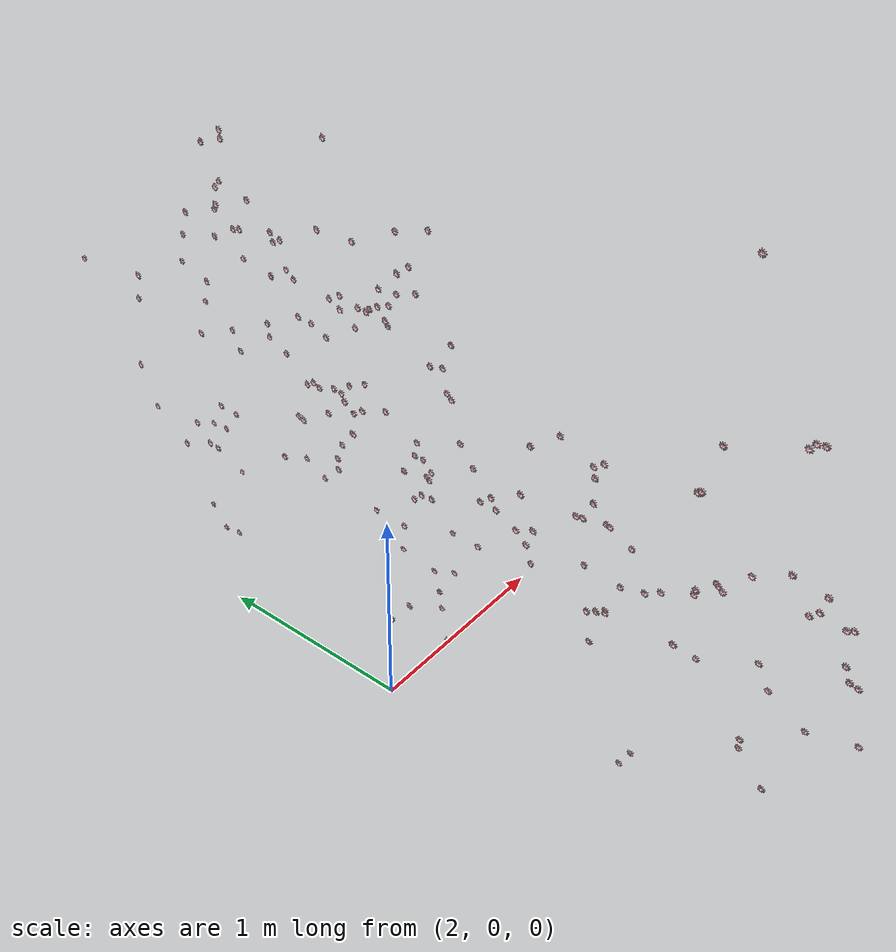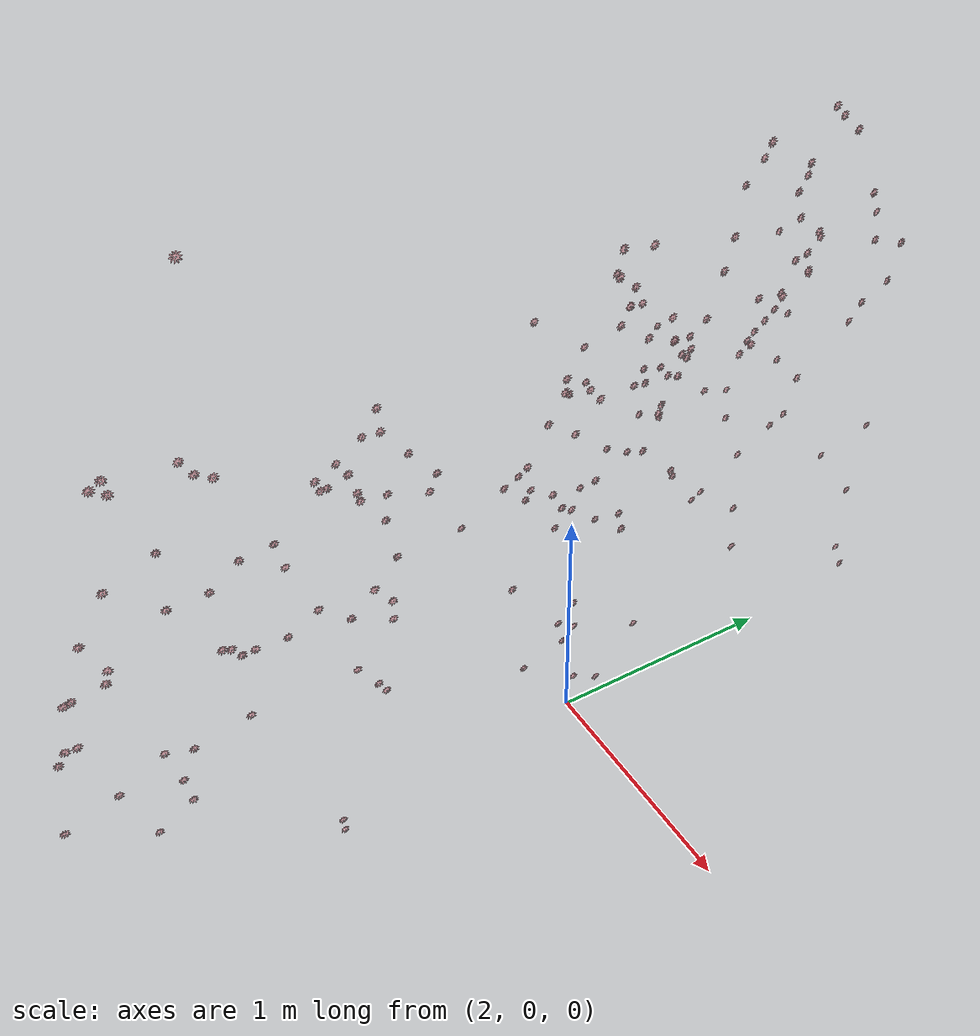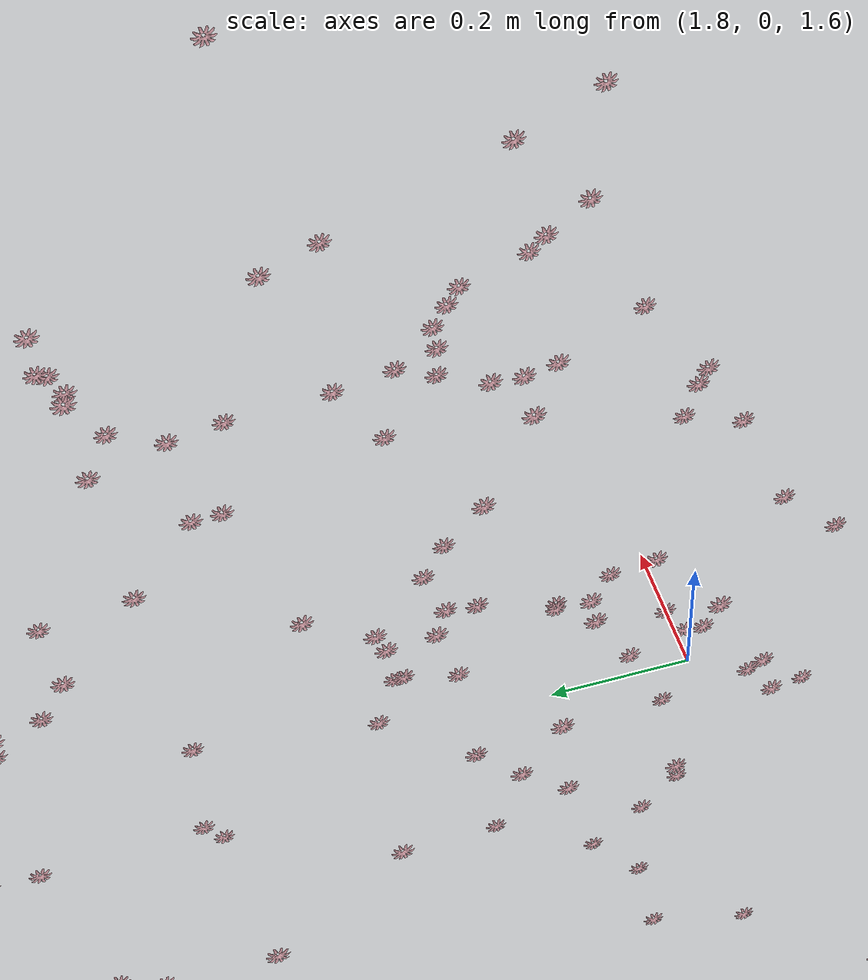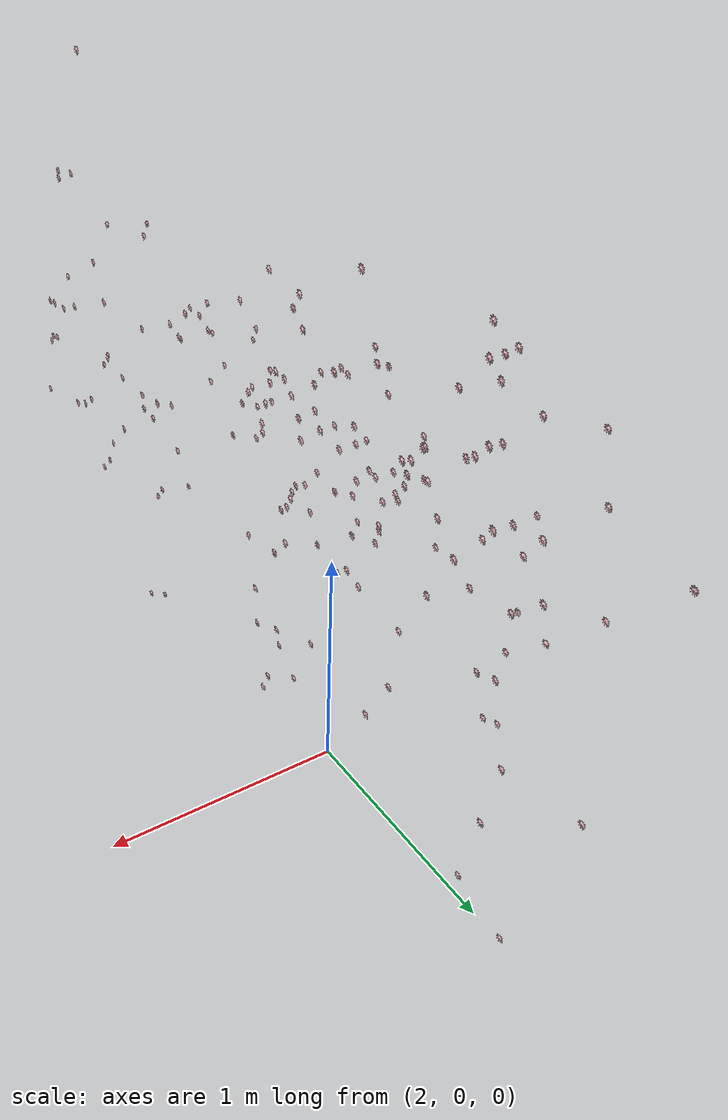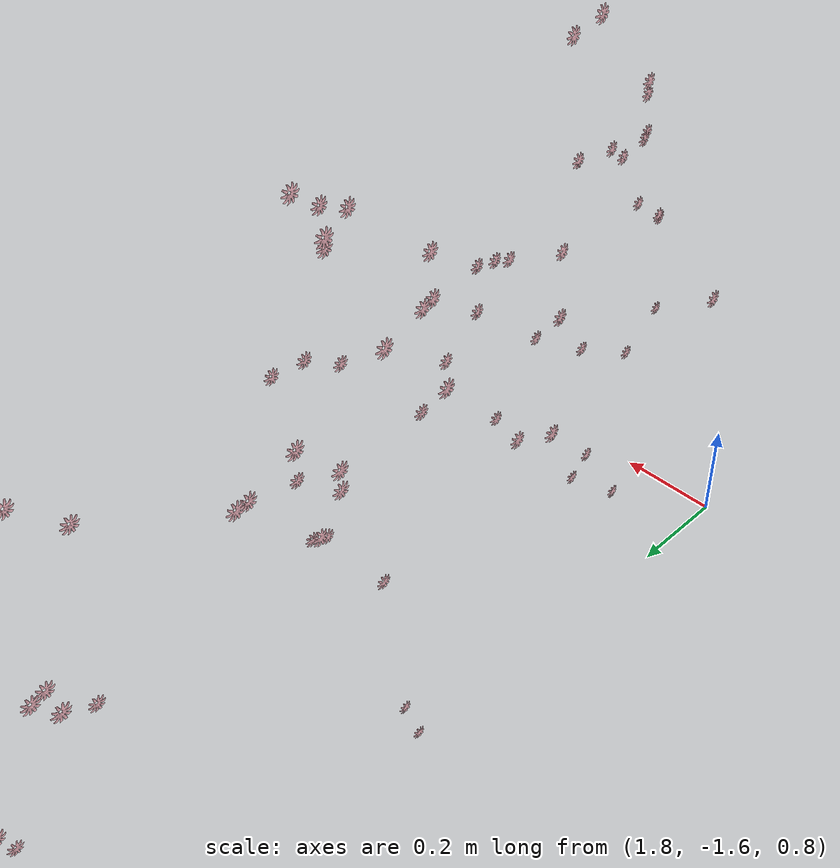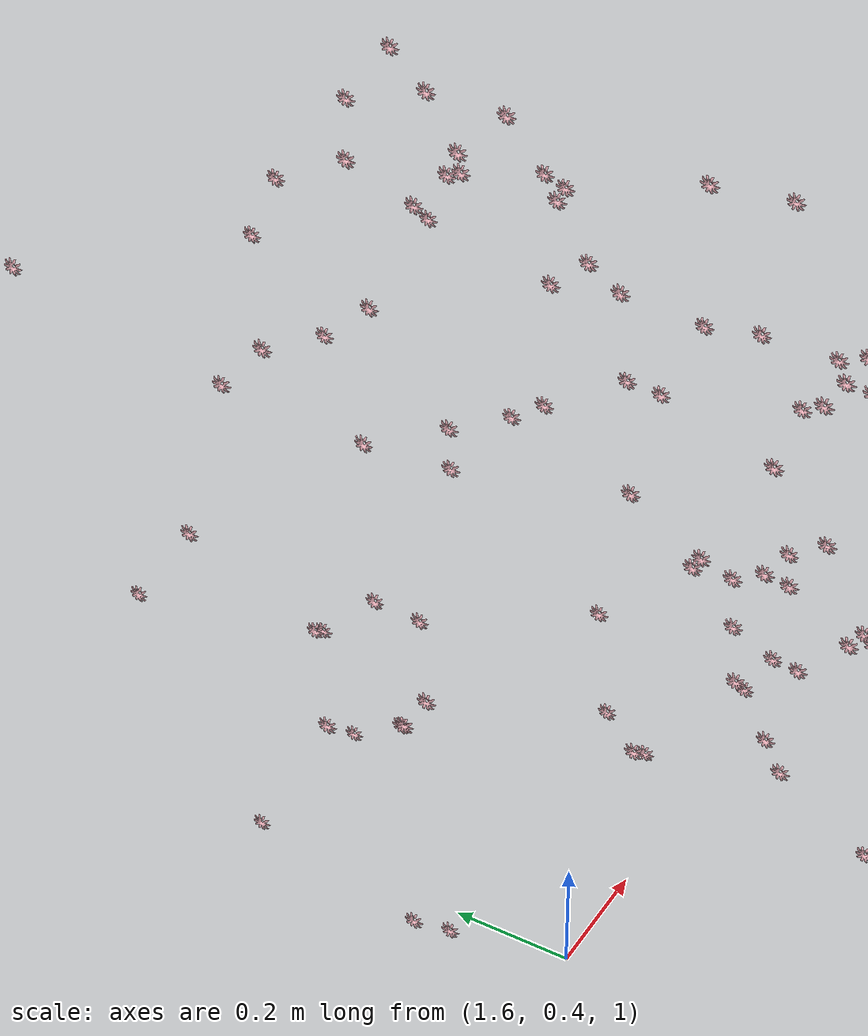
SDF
<sdf version="1.4">
 <world name="pollination_world">
  <include><uri>model://sun</uri></include>
  <include>
   <uri>model://flower2</uri>
   <name>target0</name>
   <pose>2.111854703426361 -0.948925614356995 0.847505693435669 0 -1.57 0</pose>
  </include>
  <include>
   <uri>model://flower2</uri>
   <name>target1</name>
   <pose>2.2413291144371033 -1.124187941551208 0.196296977996826 0 -1.57 0</pose>
  </include>
  <include>
   <uri>model://flower2</uri>
   <name>target2</name>
   <pose>2.1803121256828306 -1.106918330192566 0.173609752655029 0 -1.57 0</pose>
  </include>
  <include>
   <uri>model://flower2</uri>
   <name>target3</name>
   <pose>2.2065389323234554 -1.3735675859451288 0.9475400352478031 0 -1.57 0</pose>
  </include>
  <include>
   <uri>model://flower2</uri>
   <name>target4</name>
   <pose>2.1533326220512388 -1.6287138795852658 0.717423534393311 0 -1.57 0</pose>
  </include>
  <include>
   <uri>model://flower2</uri>
   <name>target5</name>
   <pose>2.155951926708221 -1.7508076143264801 0.5203785705566409 0 -1.57 0</pose>
  </include>
  <include>
   <uri>model://flower2</uri>
   <name>target6</name>
   <pose>2.2230547499656677 -1.84487541675568 0.8533997631072999 0 -1.57 0</pose>
  </include>
  <include>
   <uri>model://flower2</uri>
   <name>target7</name>
   <pose>2.280927789211273 -2.0348820924758897 0.85346474647522 0 -1.57 0</pose>
  </include>
  <include>
   <uri>model://flower2</uri>
   <name>target8</name>
   <pose>2.1810714125633237 -1.618321042060852 0.637629718780518 0 -1.57 0</pose>
  </include>
  <include>
   <uri>model://flower2</uri>
   <name>target9</name>
   <pose>2.275654122829437 -0.913814749717712 0.8746062469482421 0 -1.57 0</pose>
  </include>
  <include>
   <uri>model://flower2</uri>
   <name>target10</name>
   <pose>2.2478764510154723 -0.929800801277161 0.890403757095337 0 -1.57 0</pose>
  </include>
  <include>
   <uri>model://flower2</uri>
   <name>target11</name>
   <pose>2.222624576091766 -1.82530163288116 1.5165232086181601 0 -1.57 0</pose>
  </include>
  <include>
   <uri>model://flower2</uri>
   <name>target12</name>
   <pose>2.283318803310394 -1.91993748188019 1.1948593211174 0 -1.57 0</pose>
  </include>
  <include>
   <uri>model://flower2</uri>
   <name>target13</name>
   <pose>2.2680015349388123 -1.98565037250519 1.13581125378609 0 -1.57 0</pose>
  </include>
  <include>
   <uri>model://flower2</uri>
   <name>target14</name>
   <pose>2.2510947108268735 -1.9556594133377099 1.1623325514793401 0 -1.57 0</pose>
  </include>
  <include>
   <uri>model://flower2</uri>
   <name>target15</name>
   <pose>2.2804967856407163 -1.92003841876984 1.37232614994049 0 -1.57 0</pose>
  </include>
  <include>
   <uri>model://flower2</uri>
   <name>target16</name>
   <pose>2.2697021651268003 -1.89680481433868 1.36801821708679 0 -1.57 0</pose>
  </include>
  <include>
   <uri>model://flower2</uri>
   <name>target17</name>
   <pose>2.289009473323822 -1.593062252998352 0.99578902721405 0 -1.57 0</pose>
  </include>
  <include>
   <uri>model://flower2</uri>
   <name>target18</name>
   <pose>2.2246273684501645 -1.675481038093567 0.955590238571167 0 -1.57 0</pose>
  </include>
  <include>
   <uri>model://flower2</uri>
   <name>target19</name>
   <pose>2.2742736601829527 -1.3802492952346799 1.29217159748077 0 -1.57 0</pose>
  </include>
  <include>
   <uri>model://flower2</uri>
   <name>target20</name>
   <pose>2.2480139994621275 -1.4021764993667598 1.30712275028229 0 -1.57 0</pose>
  </include>
  <include>
   <uri>model://flower2</uri>
   <name>target21</name>
   <pose>2.2190586733818054 -1.321501240730286 1.24049582242966 0 -1.57 0</pose>
  </include>
  <include>
   <uri>model://flower2</uri>
   <name>target22</name>
   <pose>2.272270276546478 -1.78800556659698 1.38818074226379 0 -1.57 0</pose>
  </include>
  <include>
   <uri>model://flower2</uri>
   <name>target23</name>
   <pose>2.228138234615326 -1.76814388751984 1.39341772079468 0 -1.57 0</pose>
  </include>
  <include>
   <uri>model://flower2</uri>
   <name>target24</name>
   <pose>2.2250788569450375 -1.347917084693909 1.94507493972778 0 -1.57 0</pose>
  </include>
  <include>
   <uri>model://flower2</uri>
   <name>target25</name>
   <pose>2.2938568663597105 -1.648326840400696 2.05459264755249 0 -1.57 0</pose>
  </include>
  <include>
   <uri>model://flower2</uri>
   <name>target26</name>
   <pose>2.277669198513031 -1.6891159486770628 2.0724974250793498 0 -1.57 0</pose>
  </include>
  <include>
   <uri>model://flower2</uri>
   <name>target27</name>
   <pose>2.239271838665008 -1.6474258852005002 2.06510564804077 0 -1.57 0</pose>
  </include>
  <include>
   <uri>model://flower2</uri>
   <name>target28</name>
   <pose>2.2956047034263607 -1.349854893684387 2.66763029098511 0 -1.57 0</pose>
  </include>
  <include>
   <uri>model://flower2</uri>
   <name>target29</name>
   <pose>2.056909663677216 -1.360247025489807 1.8490823554992701 0 -1.57 0</pose>
  </include>
  <include>
   <uri>model://flower2</uri>
   <name>target30</name>
   <pose>2.0250736188888547 -1.3898071908950809 1.88637426376343 0 -1.57 0</pose>
  </include>
  <include>
   <uri>model://flower2</uri>
   <name>target31</name>
   <pose>2.117332293987274 -1.062708449363708 1.2013356512785 0 -1.57 0</pose>
  </include>
  <include>
   <uri>model://flower2</uri>
   <name>target32</name>
   <pose>2.177674157619476 -1.553868298530579 1.4933322429656999 0 -1.57 0</pose>
  </include>
  <include>
   <uri>model://flower2</uri>
   <name>target33</name>
   <pose>2.2708507323265072 -1.008897976875305 1.26047307372093 0 -1.57 0</pose>
  </include>
  <include>
   <uri>model://flower2</uri>
   <name>target34</name>
   <pose>2.186701323986053 -1.200131001472473 1.20439617455006 0 -1.57 0</pose>
  </include>
  <include>
   <uri>model://flower2</uri>
   <name>target35</name>
   <pose>1.963096728920937 -1.252863850593567 1.3904647254943798 0 -1.57 0</pose>
  </include>
  <include>
   <uri>model://flower2</uri>
   <name>target36</name>
   <pose>2.0774689507484436 -1.394111695289612 1.4078600692749001 0 -1.57 0</pose>
  </include>
  <include>
   <uri>model://flower2</uri>
   <name>target37</name>
   <pose>1.7968590998649598 -1.473827481269836 1.39924926757813 0 -1.57 0</pose>
  </include>
  <include>
   <uri>model://flower2</uri>
   <name>target38</name>
   <pose>2.233456161022186 -1.4276831102371221 1.3043656682968099 0 -1.57 0</pose>
  </include>
  <include>
   <uri>model://flower2</uri>
   <name>target39</name>
   <pose>2.1442520213127136 -1.711726269721985 1.61209173202515 0 -1.57 0</pose>
  </include>
  <include>
   <uri>model://flower2</uri>
   <name>target40</name>
   <pose>2.232240331172943 -0.16430798053741502 0.687498550415039 0 -1.57 0</pose>
  </include>
  <include>
   <uri>model://flower2</uri>
   <name>target41</name>
   <pose>2.0812924885749817 -0.24618753910064695 0.44389978408813496 0 -1.57 0</pose>
  </include>
  <include>
   <uri>model://flower2</uri>
   <name>target42</name>
   <pose>2.2535225176811218 -0.13611752033233604 0.886912651062012 0 -1.57 0</pose>
  </include>
  <include>
   <uri>model://flower2</uri>
   <name>target43</name>
   <pose>2.189002559185028 -0.08616146564483596 0.686715030670166 0 -1.57 0</pose>
  </include>
  <include>
   <uri>model://flower2</uri>
   <name>target44</name>
   <pose>2.2214482855796813 -0.10251289844512901 0.44784559249877903 0 -1.57 0</pose>
  </include>
  <include>
   <uri>model://flower2</uri>
   <name>target45</name>
   <pose>2.0435965800285336 -0.06239845752716111 0.5665639305114749 0 -1.57 0</pose>
  </include>
  <include>
   <uri>model://flower2</uri>
   <name>target46</name>
   <pose>2.2550406241416927 0.14965560436248793 0.639692707061768 0 -1.57 0</pose>
  </include>
  <include>
   <uri>model://flower2</uri>
   <name>target47</name>
   <pose>2.162798459529877 0.26609027385712003 1.5392929649353 0 -1.57 0</pose>
  </include>
  <include>
   <uri>model://flower2</uri>
   <name>target48</name>
   <pose>2.1186581778526308 0.3108224058151199 1.53423749923706 0 -1.57 0</pose>
  </include>
  <include>
   <uri>model://flower2</uri>
   <name>target49</name>
   <pose>2.0857986235618586 0.26756724834442003 1.3244892692565902 0 -1.57 0</pose>
  </include>
  <include>
   <uri>model://flower2</uri>
   <name>target50</name>
   <pose>1.985101091861725 0.27055194377899006 1.2535019659996 0 -1.57 0</pose>
  </include>
  <include>
   <uri>model://flower2</uri>
   <name>target51</name>
   <pose>1.930629891455173 0.21619975566864003 1.25469722986221 0 -1.57 0</pose>
  </include>
  <include>
   <uri>model://flower2</uri>
   <name>target52</name>
   <pose>2.2221586966514586 -0.12508183002471907 1.63211572647095 0 -1.57 0</pose>
  </include>
  <include>
   <uri>model://flower2</uri>
   <name>target53</name>
   <pose>2.1622585082054138 -0.09253696918487508 1.25024144053459 0 -1.57 0</pose>
  </include>
  <include>
   <uri>model://flower2</uri>
   <name>target54</name>
   <pose>2.1266163706779477 -0.10995148181915293 1.24093549132347 0 -1.57 0</pose>
  </include>
  <include>
   <uri>model://flower2</uri>
   <name>target55</name>
   <pose>2.092501480579376 -0.12785835742950402 1.2851143932342501 0 -1.57 0</pose>
  </include>
  <include>
   <uri>model://flower2</uri>
   <name>target56</name>
   <pose>2.163497016429901 -0.341314377784729 0.981791563034058 0 -1.57 0</pose>
  </include>
  <include>
   <uri>model://flower2</uri>
   <name>target57</name>
   <pose>2.2990121817588802 0.20009295940399197 1.9337940406799299 0 -1.57 0</pose>
  </include>
  <include>
   <uri>model://flower2</uri>
   <name>target58</name>
   <pose>2.233800332546234 0.23816489696502696 1.97382204055786 0 -1.57 0</pose>
  </include>
  <include>
   <uri>model://flower2</uri>
   <name>target59</name>
   <pose>2.2855400443077087 0.23829944133758507 1.7744047546386699 0 -1.57 0</pose>
  </include>
  <include>
   <uri>model://flower2</uri>
   <name>target60</name>
   <pose>2.255467364788055 0.30911799907684 1.84132247924805 0 -1.57 0</pose>
  </include>
  <include>
   <uri>model://flower2</uri>
   <name>target61</name>
   <pose>2.2394959425926206 0.25139060497284005 1.88347131729126 0 -1.57 0</pose>
  </include>
  <include>
   <uri>model://flower2</uri>
   <name>target62</name>
   <pose>2.298448312282562 -0.86968624830246 1.29387466669083 0 -1.57 0</pose>
  </include>
  <include>
   <uri>model://flower2</uri>
   <name>target63</name>
   <pose>2.2557813811302183 -0.9121637868881229 1.32973291873932 0 -1.57 0</pose>
  </include>
  <include>
   <uri>model://flower2</uri>
   <name>target64</name>
   <pose>2.1195307230949396 -0.343948426246643 1.4201963233947799 0 -1.57 0</pose>
  </include>
  <include>
   <uri>model://flower2</uri>
   <name>target65</name>
   <pose>2.016168134212494 0.26035132884979006 1.57354825973511 0 -1.57 0</pose>
  </include>
  <include>
   <uri>model://flower2</uri>
   <name>target66</name>
   <pose>2.021227786540985 0.30619479656219006 1.5735789108276401 0 -1.57 0</pose>
  </include>
  <include>
   <uri>model://flower2</uri>
   <name>target67</name>
   <pose>2.012605893611908 0.41418574810027997 1.56365213394165 0 -1.57 0</pose>
  </include>
  <include>
   <uri>model://flower2</uri>
   <name>target68</name>
   <pose>1.9684289258718488 0.10435508251190195 1.5826831626892102 0 -1.57 0</pose>
  </include>
  <include>
   <uri>model://flower2</uri>
   <name>target69</name>
   <pose>1.9270753383636468 0.11138072490692097 1.5898114204406701 0 -1.57 0</pose>
  </include>
  <include>
   <uri>model://flower2</uri>
   <name>target70</name>
   <pose>1.9908919191360468 -0.0014899110794069914 1.6129704856872602 0 -1.57 0</pose>
  </include>
  <include>
   <uri>model://flower2</uri>
   <name>target71</name>
   <pose>1.7587449717521668 -0.0031182909011839843 1.7885507774353 0 -1.57 0</pose>
  </include>
  <include>
   <uri>model://flower2</uri>
   <name>target72</name>
   <pose>2.1647405505180357 -0.19512468814849904 1.66205564498901 0 -1.57 0</pose>
  </include>
  <include>
   <uri>model://flower2</uri>
   <name>target73</name>
   <pose>2.138068339824677 -0.10822853565216106 1.7987294006347698 0 -1.57 0</pose>
  </include>
  <include>
   <uri>model://flower2</uri>
   <name>target74</name>
   <pose>2.29961728811264 -0.08342598438262894 1.80426927566528 0 -1.57 0</pose>
  </include>
  <include>
   <uri>model://flower2</uri>
   <name>target75</name>
   <pose>2.178666598796844 -0.13904503345489505 1.7800895690918 0 -1.57 0</pose>
  </include>
  <include>
   <uri>model://flower2</uri>
   <name>target76</name>
   <pose>2.1390060114860527 -0.262653126716614 1.4928670406341602 0 -1.57 0</pose>
  </include>
  <include>
   <uri>model://flower2</uri>
   <name>target77</name>
   <pose>2.0290924239158628 -0.20478783130645806 1.24912249445915 0 -1.57 0</pose>
  </include>
  <include>
   <uri>model://flower2</uri>
   <name>target78</name>
   <pose>2.007833082675934 -0.17043110370636005 1.26595729351044 0 -1.57 0</pose>
  </include>
  <include>
   <uri>model://flower2</uri>
   <name>target79</name>
   <pose>1.9456018666923047 -0.18393267154693604 1.2925151324272202 0 -1.57 0</pose>
  </include>
  <include>
   <uri>model://flower2</uri>
   <name>target80</name>
   <pose>1.9634892141818998 -0.7227883338928223 1.7993401145935102 0 -1.57 0</pose>
  </include>
  <include>
   <uri>model://flower2</uri>
   <name>target81</name>
   <pose>1.9847550415992739 -0.955706753730774 1.5709303092956501 0 -1.57 0</pose>
  </include>
  <include>
   <uri>model://flower2</uri>
   <name>target82</name>
   <pose>1.9801707303524019 -0.928555407524109 1.56810359954834 0 -1.57 0</pose>
  </include>
  <include>
   <uri>model://flower2</uri>
   <name>target83</name>
   <pose>2.011236965656281 -0.978201713562012 1.63527437210083 0 -1.57 0</pose>
  </include>
  <include>
   <uri>model://flower2</uri>
   <name>target84</name>
   <pose>2.155256192684174 -0.887772221565247 1.61879768371582 0 -1.57 0</pose>
  </include>
  <include>
   <uri>model://flower2</uri>
   <name>target85</name>
   <pose>2.183131062984467 -0.906049227714539 1.6769769859313999 0 -1.57 0</pose>
  </include>
  <include>
   <uri>model://flower2</uri>
   <name>target86</name>
   <pose>2.114289510250092 -0.903531913757324 1.70363296508789 0 -1.57 0</pose>
  </include>
  <include>
   <uri>model://flower2</uri>
   <name>target87</name>
   <pose>1.9843622672557828 -0.562233376502991 1.40535863876343 0 -1.57 0</pose>
  </include>
  <include>
   <uri>model://flower2</uri>
   <name>target88</name>
   <pose>1.9298029810190198 -0.6977665901184082 1.41258234977722 0 -1.57 0</pose>
  </include>
  <include>
   <uri>model://flower2</uri>
   <name>target89</name>
   <pose>2.084711329936981 -0.7689073872566223 1.7987143325805701 0 -1.57 0</pose>
  </include>
  <include>
   <uri>model://flower2</uri>
   <name>target90</name>
   <pose>1.905062243938446 -0.595537171363831 1.5323743915557901 0 -1.57 0</pose>
  </include>
  <include>
   <uri>model://flower2</uri>
   <name>target91</name>
   <pose>1.8387900424003598 -1.091863331794739 1.2975000166893 0 -1.57 0</pose>
  </include>
  <include>
   <uri>model://flower2</uri>
   <name>target92</name>
   <pose>1.8412930989265437 -0.8369888764619827 1.54004382133484 0 -1.57 0</pose>
  </include>
  <include>
   <uri>model://flower2</uri>
   <name>target93</name>
   <pose>1.8786608147621149 -0.7489185094833374 1.64215154647827 0 -1.57 0</pose>
  </include>
  <include>
   <uri>model://flower2</uri>
   <name>target94</name>
   <pose>2.2106799483299255 -0.8372258001565933 1.12296447455883 0 -1.57 0</pose>
  </include>
  <include>
   <uri>model://flower2</uri>
   <name>target95</name>
   <pose>1.962348991036415 -0.7254000186920166 1.3328786182403602 0 -1.57 0</pose>
  </include>
  <include>
   <uri>model://flower2</uri>
   <name>target96</name>
   <pose>1.9489743047952648 -0.513108334541321 1.44344213485718 0 -1.57 0</pose>
  </include>
  <include>
   <uri>model://flower2</uri>
   <name>target97</name>
   <pose>2.012797849178314 -0.7175642728805542 1.20001668989658 0 -1.57 0</pose>
  </include>
  <include>
   <uri>model://flower2</uri>
   <name>target98</name>
   <pose>1.9101639807224269 -1.088471894264221 1.24241765856743 0 -1.57 0</pose>
  </include>
  <include>
   <uri>model://flower2</uri>
   <name>target99</name>
   <pose>2.276433395385742 0.04709158325195306 1.18292929804325 0 -1.57 0</pose>
  </include>
  <include>
   <uri>model://flower2</uri>
   <name>target100</name>
   <pose>1.676201956510544 -0.287507949829102 0.896938177108765 0 -1.57 0</pose>
  </include>
  <include>
   <uri>model://flower2</uri>
   <name>target101</name>
   <pose>2.014130786895752 -0.06752236938476597 1.0467560682296801 0 -1.57 0</pose>
  </include>
  <include>
   <uri>model://flower2</uri>
   <name>target102</name>
   <pose>2.2381362953186033 0.06122995758056604 1.22117890334129 0 -1.57 0</pose>
  </include>
  <include>
   <uri>model://flower2</uri>
   <name>target103</name>
   <pose>2.281937316894531 -0.03853177642822303 0.466967903137207 0 -1.57 0</pose>
  </include>
  <include>
   <uri>model://flower2</uri>
   <name>target104</name>
   <pose>2.1650681152343747 1.01508537912369 2.41809774017334 0 -1.57 0</pose>
  </include>
  <include>
   <uri>model://flower2</uri>
   <name>target105</name>
   <pose>2.1105356636047357 0.95526302719116 2.4925917968749998 0 -1.57 0</pose>
  </include>
  <include>
   <uri>model://flower2</uri>
   <name>target106</name>
   <pose>2.075901626586914 1.0315962352752701 2.4323702392578097 0 -1.57 0</pose>
  </include>
  <include>
   <uri>model://flower2</uri>
   <name>target107</name>
   <pose>1.9502094974517818 1.02550990486145 2.1698833618164097 0 -1.57 0</pose>
  </include>
  <include>
   <uri>model://flower2</uri>
   <name>target108</name>
   <pose>2.1144304122924797 0.8339563121795701 2.21954862213135 0 -1.57 0</pose>
  </include>
  <include>
   <uri>model://flower2</uri>
   <name>target109</name>
   <pose>2.046338562011719 0.93847241306305 2.27251027679443 0 -1.57 0</pose>
  </include>
  <include>
   <uri>model://flower2</uri>
   <name>target110</name>
   <pose>1.9380117549896239 0.8207816925048801 2.27598390197754 0 -1.57 0</pose>
  </include>
  <include>
   <uri>model://flower2</uri>
   <name>target111</name>
   <pose>2.024818405151367 0.9475227298736602 2.05637586212158 0 -1.57 0</pose>
  </include>
  <include>
   <uri>model://flower2</uri>
   <name>target112</name>
   <pose>1.9983499946594239 0.8660052242279099 1.64651750183105 0 -1.57 0</pose>
  </include>
  <include>
   <uri>model://flower2</uri>
   <name>target113</name>
   <pose>2.206790794372558 1.09623495930433 2.18860669708252 0 -1.57 0</pose>
  </include>
  <include>
   <uri>model://flower2</uri>
   <name>target114</name>
   <pose>2.149171451568604 0.93348445320129 2.04041482543945 0 -1.57 0</pose>
  </include>
  <include>
   <uri>model://flower2</uri>
   <name>target115</name>
   <pose>2.1265144958496087 0.94596617603302 2.0464441452026403 0 -1.57 0</pose>
  </include>
  <include>
   <uri>model://flower2</uri>
   <name>target116</name>
   <pose>2.085932811737061 0.74102182769775 1.68467473602295 0 -1.57 0</pose>
  </include>
  <include>
   <uri>model://flower2</uri>
   <name>target117</name>
   <pose>2.2491026535034178 0.7993790950775099 1.99314729309082 0 -1.57 0</pose>
  </include>
  <include>
   <uri>model://flower2</uri>
   <name>target118</name>
   <pose>2.1759537925720207 0.6577284278869602 1.88928399658203 0 -1.57 0</pose>
  </include>
  <include>
   <uri>model://flower2</uri>
   <name>target119</name>
   <pose>2.159592422485352 0.77398045921326 1.86994508361816 0 -1.57 0</pose>
  </include>
  <include>
   <uri>model://flower2</uri>
   <name>target120</name>
   <pose>2.1955629577636717 0.7853619041442901 2.01147996520996 0 -1.57 0</pose>
  </include>
  <include>
   <uri>model://flower2</uri>
   <name>target121</name>
   <pose>2.2141984977722164 0.8183230533599899 2.03908704376221 0 -1.57 0</pose>
  </include>
  <include>
   <uri>model://flower2</uri>
   <name>target122</name>
   <pose>2.273570789337158 1.0633759512901302 1.8013651428222701 0 -1.57 0</pose>
  </include>
  <include>
   <uri>model://flower2</uri>
   <name>target123</name>
   <pose>2.26742716217041 1.21378607654572 1.9954757461547898 0 -1.57 0</pose>
  </include>
  <include>
   <uri>model://flower2</uri>
   <name>target124</name>
   <pose>2.1103562583923337 1.25242118263245 1.92553628540039 0 -1.57 0</pose>
  </include>
  <include>
   <uri>model://flower2</uri>
   <name>target125</name>
   <pose>2.144426216125488 1.3208757629394499 1.75331725692749 0 -1.57 0</pose>
  </include>
  <include>
   <uri>model://flower2</uri>
   <name>target126</name>
   <pose>1.8084525861740108 1.5631763305664101 1.8280779800415 0 -1.57 0</pose>
  </include>
  <include>
   <uri>model://flower2</uri>
   <name>target127</name>
   <pose>2.024583620071411 1.02866124773026 1.811094165802 0 -1.57 0</pose>
  </include>
  <include>
   <uri>model://flower2</uri>
   <name>target128</name>
   <pose>2.0598559989929197 0.8970206489563 1.4969581756591799 0 -1.57 0</pose>
  </include>
  <include>
   <uri>model://flower2</uri>
   <name>target129</name>
   <pose>2.127482685089111 1.1744874372482301 1.6119405899047898 0 -1.57 0</pose>
  </include>
  <include>
   <uri>model://flower2</uri>
   <name>target130</name>
   <pose>1.759098354816437 1.2120055093765298 1.44921308135986 0 -1.57 0</pose>
  </include>
  <include>
   <uri>model://flower2</uri>
   <name>target131</name>
   <pose>1.9222170391082758 0.9800901069641099 1.62138272857666 0 -1.57 0</pose>
  </include>
  <include>
   <uri>model://flower2</uri>
   <name>target132</name>
   <pose>1.733787829518318 1.12656449818611 1.8280891189575201 0 -1.57 0</pose>
  </include>
  <include>
   <uri>model://flower2</uri>
   <name>target133</name>
   <pose>1.654011193752289 1.00059459114075 2.0171728286743202 0 -1.57 0</pose>
  </include>
  <include>
   <uri>model://flower2</uri>
   <name>target134</name>
   <pose>2.2759714355468748 0.5567002525329598 1.78929442977905 0 -1.57 0</pose>
  </include>
  <include>
   <uri>model://flower2</uri>
   <name>target135</name>
   <pose>2.211707691192627 0.7346830596923801 1.8921015319824201 0 -1.57 0</pose>
  </include>
  <include>
   <uri>model://flower2</uri>
   <name>target136</name>
   <pose>2.167478908538818 0.63610063934326 1.7209303627014199 0 -1.57 0</pose>
  </include>
  <include>
   <uri>model://flower2</uri>
   <name>target137</name>
   <pose>2.181479629516602 0.5127635421752901 2.16725991821289 0 -1.57 0</pose>
  </include>
  <include>
   <uri>model://flower2</uri>
   <name>target138</name>
   <pose>2.2698697700500485 0.40639292144774997 2.11312989807129 0 -1.57 0</pose>
  </include>
  <include>
   <uri>model://flower2</uri>
   <name>target139</name>
   <pose>2.1940815963745117 0.41649214172363 1.8940536270141601 0 -1.57 0</pose>
  </include>
  <include>
   <uri>model://flower2</uri>
   <name>target140</name>
   <pose>1.9564513149261469 0.2706263580322301 1.86757024383545 0 -1.57 0</pose>
  </include>
  <include>
   <uri>model://flower2</uri>
   <name>target141</name>
   <pose>2.271800350189209 0.54204094314575 2.52107263183594 0 -1.57 0</pose>
  </include>
  <include>
   <uri>model://flower2</uri>
   <name>target142</name>
   <pose>2.200021900177002 0.34160398864746 1.76659059143066 0 -1.57 0</pose>
  </include>
  <include>
   <uri>model://flower2</uri>
   <name>target143</name>
   <pose>2.0894211425781246 0.21951128387451202 1.96051972961426 0 -1.57 0</pose>
  </include>
  <include>
   <uri>model://flower2</uri>
   <name>target144</name>
   <pose>2.085217765808105 0.17248369598388702 1.9620361480712898 0 -1.57 0</pose>
  </include>
  <include>
   <uri>model://flower2</uri>
   <name>target145</name>
   <pose>1.9656427230834959 0.197928565979004 2.0187205657959 0 -1.57 0</pose>
  </include>
  <include>
   <uri>model://flower2</uri>
   <name>target146</name>
   <pose>2.0340137233734126 1.49804912948608 0.951296716690063 0 -1.57 0</pose>
  </include>
  <include>
   <uri>model://flower2</uri>
   <name>target147</name>
   <pose>2.2602668800354 1.20191034698486 0.563020969390869 0 -1.57 0</pose>
  </include>
  <include>
   <uri>model://flower2</uri>
   <name>target148</name>
   <pose>2.174560302734375 1.3462678661346401 0.33933766937255905 0 -1.57 0</pose>
  </include>
  <include>
   <uri>model://flower2</uri>
   <name>target149</name>
   <pose>2.22207222366333 1.24052119636536 0.830915904998779 0 -1.57 0</pose>
  </include>
  <include>
   <uri>model://flower2</uri>
   <name>target150</name>
   <pose>2.1023778572082517 1.18403889560699 0.957682066917419 0 -1.57 0</pose>
  </include>
  <include>
   <uri>model://flower2</uri>
   <name>target151</name>
   <pose>2.0177628459930417 1.01643067741394 1.17673176562786 0 -1.57 0</pose>
  </include>
  <include>
   <uri>model://flower2</uri>
   <name>target152</name>
   <pose>2.031308473587036 0.93792813205719 1.15736625289917 0 -1.57 0</pose>
  </include>
  <include>
   <uri>model://flower2</uri>
   <name>target153</name>
   <pose>2.2974962463378903 0.09739454650878898 1.97412400817871 0 -1.57 0</pose>
  </include>
  <include>
   <uri>model://flower2</uri>
   <name>target154</name>
   <pose>2.2650937309265133 0.004439567565918012 2.30152192687988 0 -1.57 0</pose>
  </include>
  <include>
   <uri>model://flower2</uri>
   <name>target155</name>
   <pose>2.1978610076904297 0.1073271408081059 2.10735925292969 0 -1.57 0</pose>
  </include>
  <include>
   <uri>model://flower2</uri>
   <name>target156</name>
   <pose>2.196884483337402 0.04555353546142593 2.15980004882812 0 -1.57 0</pose>
  </include>
  <include>
   <uri>model://flower2</uri>
   <name>target157</name>
   <pose>2.2342066230773923 0.1433125534057621 2.26316316223145 0 -1.57 0</pose>
  </include>
  <include>
   <uri>model://flower2</uri>
   <name>target158</name>
   <pose>2.190943435668945 0.5863756599426302 1.69560599899292 0 -1.57 0</pose>
  </include>
  <include>
   <uri>model://flower2</uri>
   <name>target159</name>
   <pose>2.2958866539001463 0.24037317657470691 1.86515107727051 0 -1.57 0</pose>
  </include>
  <include>
   <uri>model://flower2</uri>
   <name>target160</name>
   <pose>1.9678514900207518 0.3361868133544901 1.59285611724854 0 -1.57 0</pose>
  </include>
  <include>
   <uri>model://flower2</uri>
   <name>target161</name>
   <pose>1.97261400604248 0.40911287689208997 1.57886069869995 0 -1.57 0</pose>
  </include>
  <include>
   <uri>model://flower2</uri>
   <name>target162</name>
   <pose>2.0416047801971438 0.36571882629395014 1.41228409385681 0 -1.57 0</pose>
  </include>
  <include>
   <uri>model://flower2</uri>
   <name>target163</name>
   <pose>1.752719719052315 0.2187697448730469 1.60734353637695 0 -1.57 0</pose>
  </include>
  <include>
   <uri>model://flower2</uri>
   <name>target164</name>
   <pose>1.8340569009780878 0.43007467651367004 1.2776165995597801 0 -1.57 0</pose>
  </include>
  <include>
   <uri>model://flower2</uri>
   <name>target165</name>
   <pose>1.9807520809173578 0.5272795715332002 1.6754611740112302 0 -1.57 0</pose>
  </include>
  <include>
   <uri>model://flower2</uri>
   <name>target166</name>
   <pose>2.1253698959350587 0.10942770385742195 1.9273162994384798 0 -1.57 0</pose>
  </include>
  <include>
   <uri>model://flower2</uri>
   <name>target167</name>
   <pose>2.159309429168701 0.6686332931518602 1.19827609708905 0 -1.57 0</pose>
  </include>
  <include>
   <uri>model://flower2</uri>
   <name>target168</name>
   <pose>2.208842777252197 0.86718826675415 1.50835560417175 0 -1.57 0</pose>
  </include>
  <include>
   <uri>model://flower2</uri>
   <name>target169</name>
   <pose>1.594148248672485 0.67483904266357 1.4735150680542 0 -1.57 0</pose>
  </include>
  <include>
   <uri>model://flower2</uri>
   <name>target170</name>
   <pose>1.7602778055667878 0.8103994789123499 1.21077280430496 0 -1.57 0</pose>
  </include>
  <include>
   <uri>model://flower2</uri>
   <name>target171</name>
   <pose>1.8462187185287477 0.8654138507843001 1.10858608922362 0 -1.57 0</pose>
  </include>
  <include>
   <uri>model://flower2</uri>
   <name>target172</name>
   <pose>1.7416913458108898 0.9446498098373399 1.15896673297882 0 -1.57 0</pose>
  </include>
  <include>
   <uri>model://flower2</uri>
   <name>target173</name>
   <pose>1.8001065888404848 0.8144697799682601 0.711030746459961 0 -1.57 0</pose>
  </include>
  <include>
   <uri>model://flower2</uri>
   <name>target174</name>
   <pose>1.8180550184249877 0.7542299976348901 0.7023691902160639 0 -1.57 0</pose>
  </include>
  <include>
   <uri>model://flower2</uri>
   <name>target175</name>
   <pose>2.1839112129211427 0.6595529403686502 0.95237845993042 0 -1.57 0</pose>
  </include>
  <include>
   <uri>model://flower2</uri>
   <name>target176</name>
   <pose>2.247036193847656 0.61682844543457 0.8204245243072511 0 -1.57 0</pose>
  </include>
  <include>
   <uri>model://flower2</uri>
   <name>target177</name>
   <pose>2.1306955947875976 0.3817551651000999 1.1893284890651699 0 -1.57 0</pose>
  </include>
  <include>
   <uri>model://flower2</uri>
   <name>target178</name>
   <pose>2.1593566932678216 0.3471414413452101 1.25035455560684 0 -1.57 0</pose>
  </include>
  <include>
   <uri>model://flower2</uri>
   <name>target179</name>
   <pose>2.0874837532043458 -0.00790280914306607 1.26319471693039 0 -1.57 0</pose>
  </include>
  <include>
   <uri>model://flower2</uri>
   <name>target180</name>
   <pose>2.176407932281494 -0.003206878662109003 1.3569362697601302 0 -1.57 0</pose>
  </include>
  <include>
   <uri>model://flower2</uri>
   <name>target181</name>
   <pose>2.0341588916778557 0.10331335449218804 1.03089279985428 0 -1.57 0</pose>
  </include>
  <scene>
   <ambient>0.7 0.7 0.7 1</ambient>
   <background>0.25 0.25 0.25 1</background>
   <shadows>false</shadows>
   <sky><material>Gazebo/SkyBlue</material></sky>
  </scene>
  <light type="directional" name="some_light">
   <diffuse>1 1 1 0</diffuse>
   <specular>0.5 0.5 0.5 0</specular>
   <direction>1 1 1</direction>
  </light>
  <plugin name="ros_interface_plugin" filename="librotors_gazebo_ros_interface_plugin.so"/>
  <spherical_coordinates>
   <surface_model>EARTH_WGS84</surface_model>
   <latitude_deg>47.3667</latitude_deg>
   <longitude_deg>8.5500</longitude_deg>
   <elevation>500.0</elevation>
   <heading_deg>0</heading_deg>
  </spherical_coordinates>
  <physics type="ode">
   <ode>
    <solver><type>quick</type><iters>700</iters><sor>1.3</sor></solver>
    <constraints>
     <cfm>0</cfm>
     <erp>0.2</erp>
     <contact_max_correcting_vel>100</contact_max_correcting_vel>
     <contact_surface_layer>0.001</contact_surface_layer>
    </constraints>
   </ode>
   <max_step_size>0.01</max_step_size>
   <real_time_factor>1</real_time_factor>
   <real_time_update_rate>100</real_time_update_rate>
   <gravity>0 0 -9.8</gravity>
  </physics>
 </world>
</sdf>

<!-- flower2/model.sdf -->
<sdf version="1.5">
  <model name="flower">
    <static>true</static>
    <link name="link">
      <pose>0 0 0 0 0 0</pose>

      <visual name="visual">
        <geometry>
          <mesh>
            <uri>model://flower2/meshes/flower.STL</uri>
            <scale>0.001 0.001 0.001</scale>
          </mesh>
        </geometry>
        <material> <!-- Wheel material -->
          <ambient>1 0.75 0.79 1</ambient>
          <diffuse>1 0.75 0.79 1</diffuse>
          <specular>1 1 1 1</specular>
          <emissive>0 0 0 1</emissive>
        </material> <!-- End wheel material -->
      </visual>

    </link>
  </model>
</sdf>
